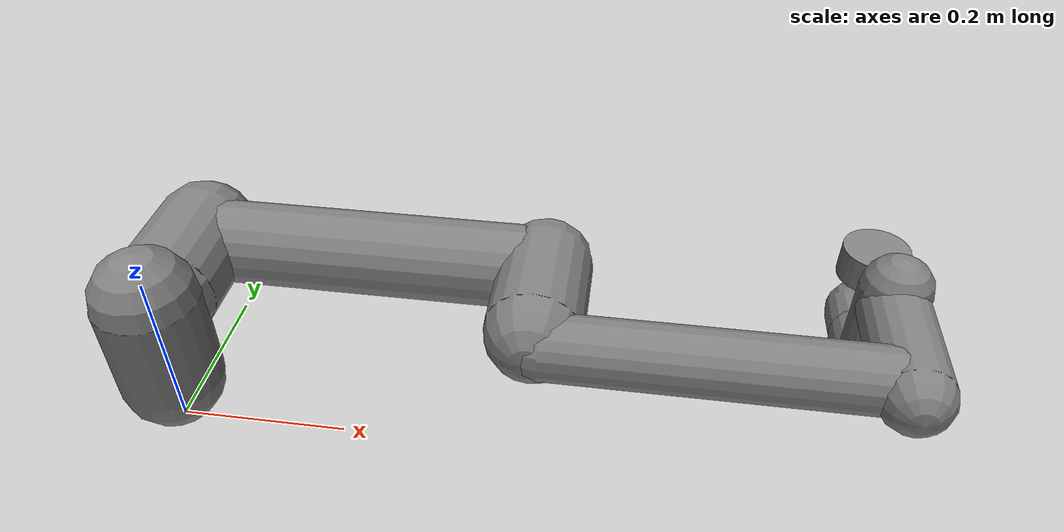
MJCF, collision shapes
<mujoco model="ur5e">
  <compiler angle="radian" meshdir="mesh" autolimits="true"/>

  <default>
    <joint axis="0 1 0" range="-6.28319 6.28319"/>
    <position ctrlrange="-6.2831 6.2831"/>

    <default class="visual">
      <geom type="mesh" contype="0" conaffinity="0" group="2"/>
    </default>
    <default class="collision">
      <geom type="capsule" group="3"/>
      <default class="eef_collision">
        <geom type="cylinder" contype="7" conaffinity="7"/>
      </default>
    </default>
    <site size="0.001" rgba="0.5 0.5 0.5 0.3" group="4"/>

    <!-- Reference:
      https://www.universal-robots.com/articles/ur/robot-care-maintenance/max-joint-torques/ -->
    <default class="size3">
      <joint armature="0.1" damping="200"/>
      <position kp="3500" forcerange="-500 500"/>
      <default class="size3_limited">
        <joint range="-3.1415 3.1415"/>
        <position ctrlrange="-3.1415 3.1415"/>
      </default>
    </default>
    <default class="size1">
      <joint armature="0.1" damping="15"/>
      <position kp="3000" forcerange="-28 28"/>
    </default>
  </default>

  <asset>
    <material name="black" specular="0.5" shininess="0.25" rgba="0.033 0.033 0.033 1"/>
    <material name="jointgray" specular="0.5" shininess="0.25" rgba="0.278 0.278 0.278 1"/>
    <material name="linkgray" specular="0.5" shininess="0.25" rgba="0.82 0.82 0.82 1"/>
    <material name="urblue" specular="0.5" shininess="0.25" rgba="0.49 0.678 0.8 1"/>
    <material name="blue" shininess="0.9" rgba="0 0 1 1"/>

    <mesh file="base_0.obj"/>
    <mesh file="base_1.obj"/>
    <mesh file="shoulder_0.obj"/>
    <mesh file="shoulder_1.obj"/>
    <mesh file="shoulder_2.obj"/>
    <mesh file="upperarm_0.obj"/>
    <mesh file="upperarm_1.obj"/>
    <mesh file="upperarm_2.obj"/>
    <mesh file="upperarm_3.obj"/>
    <mesh file="forearm_0.obj"/>
    <mesh file="forearm_1.obj"/>
    <mesh file="forearm_2.obj"/>
    <mesh file="forearm_3.obj"/>
    <mesh file="wrist1_0.obj"/>
    <mesh file="wrist1_1.obj"/>
    <mesh file="wrist1_2.obj"/>
    <mesh file="wrist2_0.obj"/>
    <mesh file="wrist2_1.obj"/>
    <mesh file="wrist2_2.obj"/>
    <mesh file="wrist3.obj"/>
    <mesh file="Project_ForceControl_mount_meter.obj"/>
  </asset>

  <!-- UR5e joints and links -->
  <worldbody>
    <light name="spotlight" mode="targetbodycom" target="eef_tool" pos="0 -1 2"/>
    <body name="base" pos="0 0 0" quat="1 0 0 0">
      <inertial mass="4.0" pos="0 0 0" diaginertia="0.00443333156 0.00443333156 0.0072"/>
      <geom mesh="base_0" material="black" class="visual"/>
      <geom mesh="base_1" material="jointgray" class="visual"/>
      <body name="shoulder_link" pos="0 0 0.163">
        <inertial mass="3.7" pos="0 0 0" diaginertia="0.0102675 0.0102675 0.00666"/>
        <joint name="shoulder_pan_joint" class="size3" axis="0 0 1"/>
        <geom mesh="shoulder_0" material="urblue" class="visual"/>
        <geom mesh="shoulder_1" material="black" class="visual"/>
        <geom mesh="shoulder_2" material="jointgray" class="visual"/>
        <geom class="collision" size="0.06 0.06" pos="0 0 -0.04"/>
        <body name="upper_arm_link" pos="0 0.138 0" quat="1 0 1 0">
          <inertial mass="8.393" pos="0 0 0.2125" diaginertia="0.133886 0.133886 0.0151074"/>
          <joint name="shoulder_lift_joint" class="size3"/>
          <geom mesh="upperarm_0" material="linkgray" class="visual"/>
          <geom mesh="upperarm_1" material="black" class="visual"/>
          <geom mesh="upperarm_2" material="jointgray" class="visual"/>
          <geom mesh="upperarm_3" material="urblue" class="visual"/>
          <geom class="collision" pos="0 -0.04 0" quat="1 1 0 0" size="0.06 0.06"/>
          <geom class="collision" size="0.05 0.2" pos="0 0 0.2"/>
          <body name="forearm_link" pos="0 -0.131 0.425">
            <inertial mass="2.275" pos="0 0 0.196" diaginertia="0.0311796 0.0311796 0.004095"/>
            <joint name="elbow_joint" class="size3_limited"/>
            <geom mesh="forearm_0" material="urblue" class="visual"/>
            <geom mesh="forearm_1" material="linkgray" class="visual"/>
            <geom mesh="forearm_2" material="black" class="visual"/>
            <geom mesh="forearm_3" material="jointgray" class="visual"/>
            <geom class="collision" pos="0 0.08 0" quat="1 1 0 0" size="0.055 0.06"/>
            <geom class="collision" size="0.038 0.19" pos="0 0 0.2"/>
            <body name="wrist_1_link" pos="0 0 0.392" quat="1 0 1 0">
              <inertial mass="1.219" pos="0 0.127 0" diaginertia="0.0025599 0.0025599 0.0021942"/>
              <joint name="wrist_1_joint" class="size1"/>
              <geom mesh="wrist1_0" material="black" class="visual"/>
              <geom mesh="wrist1_1" material="urblue" class="visual"/>
              <geom mesh="wrist1_2" material="jointgray" class="visual"/>
              <geom class="collision" pos="0 0.05 0" quat="1 1 0 0" size="0.04 0.07"/>
              <body name="wrist_2_link" pos="0 0.127 0">
                <inertial mass="1.219" pos="0 0 0.1" diaginertia="0.0025599 0.0025599 0.0021942"/>
                <joint name="wrist_2_joint" axis="0 0 1" class="size1"/>
                <geom mesh="wrist2_0" material="black" class="visual"/>
                <geom mesh="wrist2_1" material="urblue" class="visual"/>
                <geom mesh="wrist2_2" material="jointgray" class="visual"/>
                <geom class="collision" size="0.04 0.06" pos="0 0 0.04"/>
                <geom class="collision" pos="0 0.02 0.1" quat="1 1 0 0" size="0.04 0.04"/>
                <body name="wrist_3_link" pos="0 0 0.1">
                  <inertial mass="0.1889" pos="0 0.0771683 0" quat="1 0 0 1"
                      diaginertia="0.000132134 9.90863e-05 9.90863e-05"/>
                  <joint name="wrist_3_joint" class="size1"/>
                  <geom material="linkgray" mesh="wrist3" class="visual"/>
                  <geom class="collision" pos="0 0.08 0" quat="1 1 0 0" size="0.04 0.02"/>
                  <site name="attachment_site" pos="0 0.1 0" quat="-1 1 0 0"/>
                  <site name="tip" size="0.0001" pos="0 0 0"/>
                  <!--Tool definition-->
                  <body name="eef_tool" pos="0 0.1 0" quat="1 -1 0 0">
                    <inertial mass="0.084262" pos="0 0.0771683 0" quat="1 0 0 1"
                      diaginertia="0 0 0"/>
                    <geom mesh="Project_ForceControl_mount_meter" material="blue" class="visual"/>
                    <geom class="eef_collision" pos="0 0.08 0" quat="1 1 0 0" size="0.04 0.02"/>
                  </body>
                </body>
              </body>
            </body>
          </body>
        </body>
      </body>
    </body>
  </worldbody>

  <sensor>
    <framepos objtype="site" objname="tip"/>
    <force site ='tip'/>
    <torque site='tip' />
  </sensor>

  <actuator>
    <position class="size3" name="shoulder_pan" joint="shoulder_pan_joint"/>
    <position class="size3" name="shoulder_lift" joint="shoulder_lift_joint"/>
    <position class="size3_limited" name="elbow" joint="elbow_joint"/>
    <position class="size1" name="wrist_1" joint="wrist_1_joint"/>
    <position class="size1" name="wrist_2" joint="wrist_2_joint"/>
    <position class="size1" name="wrist_3" joint="wrist_3_joint"/>
  </actuator>

  <keyframe>
    <key name="home" qpos="-1.5708 -1.5708 1.5708 -1.5708 -1.5708 0"
        ctrl="-1.5708 -1.5708 1.5708 -1.5708 -1.5708 0"/>
  </keyframe>
</mujoco>
